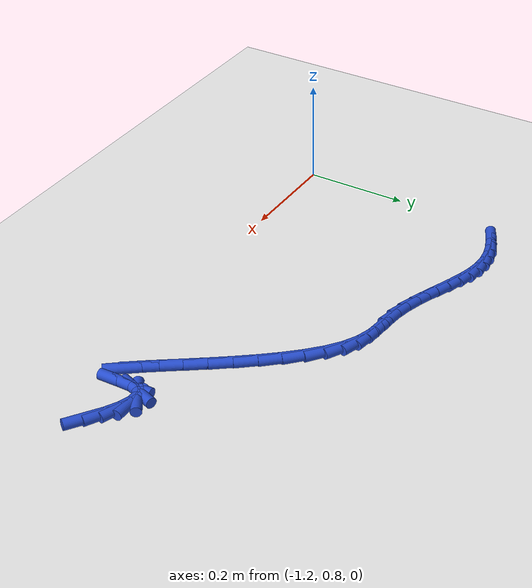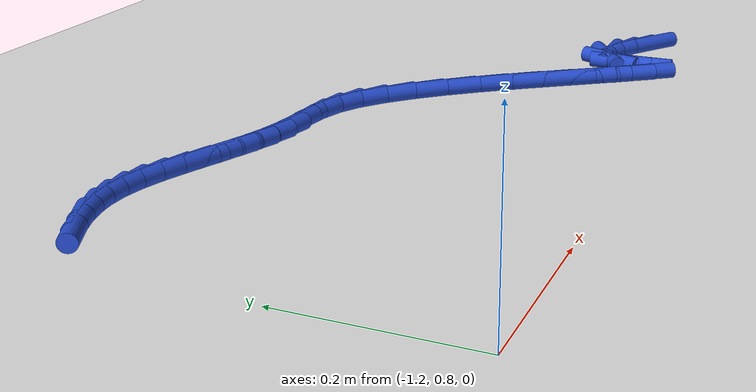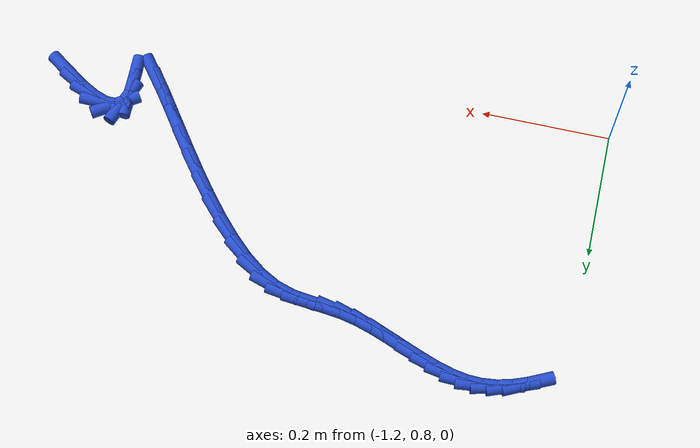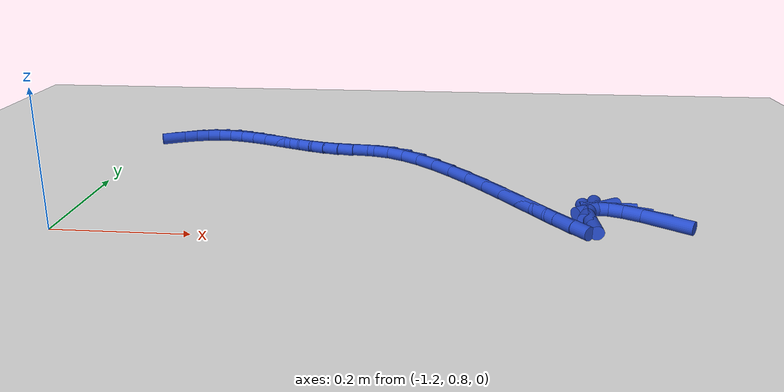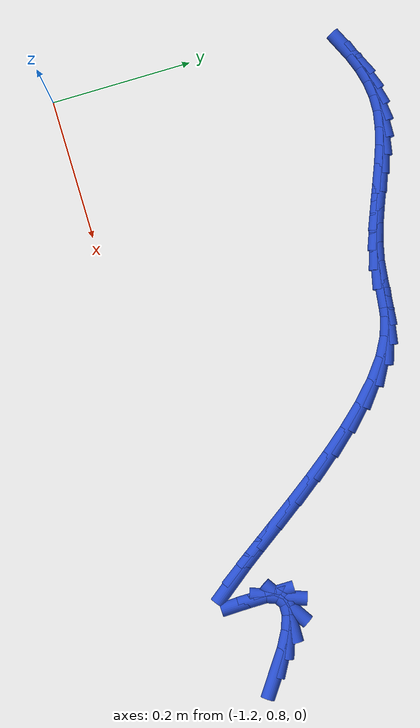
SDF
<sdf version="1.6">
 <world name="default">
  <model name="ground_plane">
   <static>1</static>
   <link name="link">
    <collision name="collision">
     <geometry><plane><normal>0 0 1</normal><size>100 100</size></plane></geometry>
     <surface><friction><ode><mu>100</mu><mu2>50</mu2></ode></friction></surface>
    </collision>
    <visual name="visual">
     <cast_shadows>0</cast_shadows>
     <geometry><plane><normal>0 0 1</normal><size>100 100</size></plane></geometry>
     <material>
      <script><uri>file://media/materials/scripts/gazebo.material</uri><name>Gazebo/WhiteGlow</name></script>
     </material>
    </visual>
   </link>
  </model>
  <model name="line">
   <link name="link_33">
    <pose>-0.35115421582154355 0.8745167682079008 0.01 0 1.57 -0.6122861447464318</pose>
    <collision name="collision">
     <geometry><cylinder><radius>0.01</radius><length>0.08</length></cylinder></geometry>
    </collision>
    <visual name="visual">
     <material>
      <script><name>Gazebo/Blue</name><uri>file://media/materials/scripts/gazebo.material</uri></script>
     </material>
     <geometry><cylinder><radius>0.01</radius><length>0.08</length></cylinder></geometry>
    </visual>
   </link>
   <link name="link_34">
    <pose>-0.3770783306099204 0.8927239794767546 0.01 0 1.57 -0.5092960089770318</pose>
    <collision name="collision">
     <geometry><cylinder><radius>0.01</radius><length>0.08</length></cylinder></geometry>
    </collision>
    <visual name="visual">
     <material>
      <script><name>Gazebo/Blue</name><uri>file://media/materials/scripts/gazebo.material</uri></script>
     </material>
     <geometry><cylinder><radius>0.01</radius><length>0.08</length></cylinder></geometry>
    </visual>
   </link>
   <link name="link_35">
    <pose>-0.4004082016848725 0.905752191878771 0.01 0 1.57 -0.33773999124530535</pose>
    <collision name="collision">
     <geometry><cylinder><radius>0.01</radius><length>0.08</length></cylinder></geometry>
    </collision>
    <visual name="visual">
     <material>
      <script><name>Gazebo/Blue</name><uri>file://media/materials/scripts/gazebo.material</uri></script>
     </material>
     <geometry><cylinder><radius>0.01</radius><length>0.08</length></cylinder></geometry>
    </visual>
   </link>
   <link name="link_36">
    <pose>-0.42043642604879505 0.9127860262010059 0.01 0 1.57 -0.013987138621494057</pose>
    <collision name="collision">
     <geometry><cylinder><radius>0.01</radius><length>0.08</length></cylinder></geometry>
    </collision>
    <visual name="visual">
     <material>
      <script><name>Gazebo/Blue</name><uri>file://media/materials/scripts/gazebo.material</uri></script>
     </material>
     <geometry><cylinder><radius>0.01</radius><length>0.08</length></cylinder></geometry>
    </visual>
   </link>
   <link name="link_37">
    <pose>-0.4364556007040834 0.9130101032305155 0.01 0 1.57 0.5797444640844538</pose>
    <collision name="collision">
     <geometry><cylinder><radius>0.01</radius><length>0.08</length></cylinder></geometry>
    </collision>
    <visual name="visual">
     <material>
      <script><name>Gazebo/Blue</name><uri>file://media/materials/scripts/gazebo.material</uri></script>
     </material>
     <geometry><cylinder><radius>0.01</radius><length>0.08</length></cylinder></geometry>
    </visual>
   </link>
   <link name="link_38">
    <pose>-0.4477583226531323 0.9056090437543557 0.01 0 1.57 1.2154460100073714</pose>
    <collision name="collision">
     <geometry><cylinder><radius>0.01</radius><length>0.08</length></cylinder></geometry>
    </collision>
    <visual name="visual">
     <material>
      <script><name>Gazebo/Blue</name><uri>file://media/materials/scripts/gazebo.material</uri></script>
     </material>
     <geometry><cylinder><radius>0.01</radius><length>0.08</length></cylinder></geometry>
    </visual>
   </link>
   <link name="link_39">
    <pose>-0.45363718889833726 0.8897674685595827 0.01 0 1.57 -1.5693667749853224</pose>
    <collision name="collision">
     <geometry><cylinder><radius>0.01</radius><length>0.08</length></cylinder></geometry>
    </collision>
    <visual name="visual">
     <material>
      <script><name>Gazebo/Blue</name><uri>file://media/materials/scripts/gazebo.material</uri></script>
     </material>
     <geometry><cylinder><radius>0.01</radius><length>0.08</length></cylinder></geometry>
    </visual>
   </link>
   <link name="link_40">
    <pose>-0.45360193034756197 0.865103425940899 0.01 0 1.57 -1.5482742946269215</pose>
    <collision name="collision">
     <geometry><cylinder><radius>0.01</radius><length>0.08</length></cylinder></geometry>
    </collision>
    <visual name="visual">
     <material>
      <script><name>Gazebo/Blue</name><uri>file://media/materials/scripts/gazebo.material</uri></script>
     </material>
     <geometry><cylinder><radius>0.01</radius><length>0.08</length></cylinder></geometry>
    </visual>
   </link>
   <link name="link_45">
    <pose>-0.48743832562579387 0.8535558136434883 0.01 0 1.57 -0.9192466775177843</pose>
    <collision name="collision">
     <geometry><cylinder><radius>0.01</radius><length>0.08</length></cylinder></geometry>
    </collision>
    <visual name="visual">
     <material>
      <script><name>Gazebo/Blue</name><uri>file://media/materials/scripts/gazebo.material</uri></script>
     </material>
     <geometry><cylinder><radius>0.01</radius><length>0.08</length></cylinder></geometry>
    </visual>
   </link>
   <link name="link_46">
    <pose>-0.5036345134865138 0.874792468611774 0.01 0 1.57 -0.9523577638987667</pose>
    <collision name="collision">
     <geometry><cylinder><radius>0.01</radius><length>0.08</length></cylinder></geometry>
    </collision>
    <visual name="visual">
     <material>
      <script><name>Gazebo/Blue</name><uri>file://media/materials/scripts/gazebo.material</uri></script>
     </material>
     <geometry><cylinder><radius>0.01</radius><length>0.08</length></cylinder></geometry>
    </visual>
   </link>
   <link name="link_47">
    <pose>-0.522267609655418 0.900978936813485 0.01 0 1.57 -0.963618666770061</pose>
    <collision name="collision">
     <geometry><cylinder><radius>0.01</radius><length>0.08</length></cylinder></geometry>
    </collision>
    <visual name="visual">
     <material>
      <script><name>Gazebo/Blue</name><uri>file://media/materials/scripts/gazebo.material</uri></script>
     </material>
     <geometry><cylinder><radius>0.01</radius><length>0.08</length></cylinder></geometry>
    </visual>
   </link>
   <link name="link_48">
    <pose>-0.5430335262153811 0.9308697332702403 0.01 0 1.57 -0.9611104917837557</pose>
    <collision name="collision">
     <geometry><cylinder><radius>0.01</radius><length>0.08</length></cylinder></geometry>
    </collision>
    <visual name="visual">
     <material>
      <script><name>Gazebo/Blue</name><uri>file://media/materials/scripts/gazebo.material</uri></script>
     </material>
     <geometry><cylinder><radius>0.01</radius><length>0.08</length></cylinder></geometry>
    </visual>
   </link>
   <link name="link_49">
    <pose>-0.5656281752492764 0.9632193730036571 0.01 0 1.57 -0.9476777698730287</pose>
    <collision name="collision">
     <geometry><cylinder><radius>0.01</radius><length>0.08</length></cylinder></geometry>
    </collision>
    <visual name="visual">
     <material>
      <script><name>Gazebo/Blue</name><uri>file://media/materials/scripts/gazebo.material</uri></script>
     </material>
     <geometry><cylinder><radius>0.01</radius><length>0.08</length></cylinder></geometry>
    </visual>
   </link>
   <link name="link_50">
    <pose>-0.5897474688399786 0.9967823710353542 0.01 0 1.57 -0.9236463535046997</pose>
    <collision name="collision">
     <geometry><cylinder><radius>0.01</radius><length>0.08</length></cylinder></geometry>
    </collision>
    <visual name="visual">
     <material>
      <script><name>Gazebo/Blue</name><uri>file://media/materials/scripts/gazebo.material</uri></script>
     </material>
     <geometry><cylinder><radius>0.01</radius><length>0.08</length></cylinder></geometry>
    </visual>
   </link>
   <link name="link_51">
    <pose>-0.6150873190703615 1.030313242386949 0.01 0 1.57 -0.8875365227898391</pose>
    <collision name="collision">
     <geometry><cylinder><radius>0.01</radius><length>0.08</length></cylinder></geometry>
    </collision>
    <visual name="visual">
     <material>
      <script><name>Gazebo/Blue</name><uri>file://media/materials/scripts/gazebo.material</uri></script>
     </material>
     <geometry><cylinder><radius>0.01</radius><length>0.08</length></cylinder></geometry>
    </visual>
   </link>
   <link name="link_52">
    <pose>-0.6413436380232991 1.06256650208006 0.01 0 1.57 -0.8359120592686451</pose>
    <collision name="collision">
     <geometry><cylinder><radius>0.01</radius><length>0.08</length></cylinder></geometry>
    </collision>
    <visual name="visual">
     <material>
      <script><name>Gazebo/Blue</name><uri>file://media/materials/scripts/gazebo.material</uri></script>
     </material>
     <geometry><cylinder><radius>0.01</radius><length>0.08</length></cylinder></geometry>
    </visual>
   </link>
   <link name="link_53">
    <pose>-0.6682123377816653 1.0922966651363046 0.01 0 1.57 -0.7625296663524496</pose>
    <collision name="collision">
     <geometry><cylinder><radius>0.01</radius><length>0.08</length></cylinder></geometry>
    </collision>
    <visual name="visual">
     <material>
      <script><name>Gazebo/Blue</name><uri>file://media/materials/scripts/gazebo.material</uri></script>
     </material>
     <geometry><cylinder><radius>0.01</radius><length>0.08</length></cylinder></geometry>
    </visual>
   </link>
   <link name="link_54">
    <pose>-0.6953893304283343 1.118258246577301 0.01 0 1.57 -0.6565941498748069</pose>
    <collision name="collision">
     <geometry><cylinder><radius>0.01</radius><length>0.08</length></cylinder></geometry>
    </collision>
    <visual name="visual">
     <material>
      <script><name>Gazebo/Blue</name><uri>file://media/materials/scripts/gazebo.material</uri></script>
     </material>
     <geometry><cylinder><radius>0.01</radius><length>0.08</length></cylinder></geometry>
    </visual>
   </link>
   <link name="link_55">
    <pose>-0.7225705280461803 1.1392057614246676 0.01 0 1.57 -0.5003534145019489</pose>
    <collision name="collision">
     <geometry><cylinder><radius>0.01</radius><length>0.08</length></cylinder></geometry>
    </collision>
    <visual name="visual">
     <material>
      <script><name>Gazebo/Blue</name><uri>file://media/materials/scripts/gazebo.material</uri></script>
     </material>
     <geometry><cylinder><radius>0.01</radius><length>0.08</length></cylinder></geometry>
    </visual>
   </link>
   <link name="link_56">
    <pose>-0.7494531698438683 1.1539041541249444 0.01 0 1.57 -0.3071795195601997</pose>
    <collision name="collision">
     <geometry><cylinder><radius>0.01</radius><length>0.08</length></cylinder></geometry>
    </collision>
    <visual name="visual">
     <material>
      <script><name>Gazebo/Blue</name><uri>file://media/materials/scripts/gazebo.material</uri></script>
     </material>
     <geometry><cylinder><radius>0.01</radius><length>0.08</length></cylinder></geometry>
    </visual>
   </link>
   <link name="link_57">
    <pose>-0.7758833735669134 1.1622883543159543 0.01 0 1.57 -0.16060609550666471</pose>
    <collision name="collision">
     <geometry><cylinder><radius>0.01</radius><length>0.08</length></cylinder></geometry>
    </collision>
    <visual name="visual">
     <material>
      <script><name>Gazebo/Blue</name><uri>file://media/materials/scripts/gazebo.material</uri></script>
     </material>
     <geometry><cylinder><radius>0.01</radius><length>0.08</length></cylinder></geometry>
    </visual>
   </link>
   <link name="link_58">
    <pose>-0.8019903108506162 1.1665177147551369 0.01 0 1.57 -0.0954093837573896</pose>
    <collision name="collision">
     <geometry><cylinder><radius>0.01</radius><length>0.08</length></cylinder></geometry>
    </collision>
    <visual name="visual">
     <material>
      <script><name>Gazebo/Blue</name><uri>file://media/materials/scripts/gazebo.material</uri></script>
     </material>
     <geometry><cylinder><radius>0.01</radius><length>0.08</length></cylinder></geometry>
    </visual>
   </link>
   <link name="link_59">
    <pose>-0.8279348402460798 1.1690006047676011 0.01 0 1.57 -0.12063070650166288</pose>
    <collision name="collision">
     <geometry><cylinder><radius>0.01</radius><length>0.08</length></cylinder></geometry>
    </collision>
    <visual name="visual">
     <material>
      <script><name>Gazebo/Blue</name><uri>file://media/materials/scripts/gazebo.material</uri></script>
     </material>
     <geometry><cylinder><radius>0.01</radius><length>0.08</length></cylinder></geometry>
    </visual>
   </link>
   <link name="link_60">
    <pose>-0.8538778203044062 1.1721453936784543 0.01 0 1.57 -0.21832715857526336</pose>
    <collision name="collision">
     <geometry><cylinder><radius>0.01</radius><length>0.08</length></cylinder></geometry>
    </collision>
    <visual name="visual">
     <material>
      <script><name>Gazebo/Blue</name><uri>file://media/materials/scripts/gazebo.material</uri></script>
     </material>
     <geometry><cylinder><radius>0.01</radius><length>0.08</length></cylinder></geometry>
    </visual>
   </link>
   <link name="link_61">
    <pose>-0.8799413938124724 1.177927951502651 0.01 0 1.57 -0.30485944899552486</pose>
    <collision name="collision">
     <geometry><cylinder><radius>0.01</radius><length>0.08</length></cylinder></geometry>
    </collision>
    <visual name="visual">
     <material>
      <script><name>Gazebo/Blue</name><uri>file://media/materials/scripts/gazebo.material</uri></script>
     </material>
     <geometry><cylinder><radius>0.01</radius><length>0.08</length></cylinder></geometry>
    </visual>
   </link>
   <link name="link_62">
    <pose>-0.906052573610294 1.1861443238581844 0.01 0 1.57 -0.35883309516860484</pose>
    <collision name="collision">
     <geometry><cylinder><radius>0.01</radius><length>0.08</length></cylinder></geometry>
    </collision>
    <visual name="visual">
     <material>
      <script><name>Gazebo/Blue</name><uri>file://media/materials/scripts/gazebo.material</uri></script>
     </material>
     <geometry><cylinder><radius>0.01</radius><length>0.08</length></cylinder></geometry>
    </visual>
   </link>
   <link name="link_63">
    <pose>-0.9320770353660446 1.195905350090115 0.01 0 1.57 -0.3836732709522244</pose>
    <collision name="collision">
     <geometry><cylinder><radius>0.01</radius><length>0.08</length></cylinder></geometry>
    </collision>
    <visual name="visual">
     <material>
      <script><name>Gazebo/Blue</name><uri>file://media/materials/scripts/gazebo.material</uri></script>
     </material>
     <geometry><cylinder><radius>0.01</radius><length>0.08</length></cylinder></geometry>
    </visual>
   </link>
   <link name="link_64">
    <pose>-0.9578804324777763 1.206321620760834 0.01 0 1.57 -0.3806049964861435</pose>
    <collision name="collision">
     <geometry><cylinder><radius>0.01</radius><length>0.08</length></cylinder></geometry>
    </collision>
    <visual name="visual">
     <material>
      <script><name>Gazebo/Blue</name><uri>file://media/materials/scripts/gazebo.material</uri></script>
     </material>
     <geometry><cylinder><radius>0.01</radius><length>0.08</length></cylinder></geometry>
    </visual>
   </link>
   <link name="link_65">
    <pose>-0.9833284183435432 1.2165037264327343 0.01 0 1.57 -0.34816262555777616</pose>
    <collision name="collision">
     <geometry><cylinder><radius>0.01</radius><length>0.08</length></cylinder></geometry>
    </collision>
    <visual name="visual">
     <material>
      <script><name>Gazebo/Blue</name><uri>file://media/materials/scripts/gazebo.material</uri></script>
     </material>
     <geometry><cylinder><radius>0.01</radius><length>0.08</length></cylinder></geometry>
    </visual>
   </link>
   <link name="link_66">
    <pose>-1.0082866463613998 1.2255622576682088 0.01 0 1.57 -0.28182718618476227</pose>
    <collision name="collision">
     <geometry><cylinder><radius>0.01</radius><length>0.08</length></cylinder></geometry>
    </collision>
    <visual name="visual">
     <material>
      <script><name>Gazebo/Blue</name><uri>file://media/materials/scripts/gazebo.material</uri></script>
     </material>
     <geometry><cylinder><radius>0.01</radius><length>0.08</length></cylinder></geometry>
    </visual>
   </link>
   <link name="link_67">
    <pose>-1.0326207699293979 1.2326078050296492 0.01 0 1.57 -0.17398242949517562</pose>
    <collision name="collision">
     <geometry><cylinder><radius>0.01</radius><length>0.08</length></cylinder></geometry>
    </collision>
    <visual name="visual">
     <material>
      <script><name>Gazebo/Blue</name><uri>file://media/materials/scripts/gazebo.material</uri></script>
     </material>
     <geometry><cylinder><radius>0.01</radius><length>0.08</length></cylinder></geometry>
    </visual>
   </link>
   <link name="link_68">
    <pose>-1.0561965825019235 1.23675147627866 0.01 0 1.57 -0.028811212141371677</pose>
    <collision name="collision">
     <geometry><cylinder><radius>0.01</radius><length>0.08</length></cylinder></geometry>
    </collision>
    <visual name="visual">
     <material>
      <script><name>Gazebo/Blue</name><uri>file://media/materials/scripts/gazebo.material</uri></script>
     </material>
     <geometry><cylinder><radius>0.01</radius><length>0.08</length></cylinder></geometry>
    </visual>
   </link>
   <link name="link_69">
    <pose>-1.0789619772237475 1.2374075564398261 0.01 0 1.57 0.11718021869951584</pose>
    <collision name="collision">
     <geometry><cylinder><radius>0.01</radius><length>0.08</length></cylinder></geometry>
    </collision>
    <visual name="visual">
     <material>
      <script><name>Gazebo/Blue</name><uri>file://media/materials/scripts/gazebo.material</uri></script>
     </material>
     <geometry><cylinder><radius>0.01</radius><length>0.08</length></cylinder></geometry>
    </visual>
   </link>
   <link name="link_70">
    <pose>-1.1010849830401146 1.2348032467516248 0.01 0 1.57 0.24850769849406085</pose>
    <collision name="collision">
     <geometry><cylinder><radius>0.01</radius><length>0.08</length></cylinder></geometry>
    </collision>
    <visual name="visual">
     <material>
      <script><name>Gazebo/Blue</name><uri>file://media/materials/scripts/gazebo.material</uri></script>
     </material>
     <geometry><cylinder><radius>0.01</radius><length>0.08</length></cylinder></geometry>
    </visual>
   </link>
   <link name="link_71">
    <pose>-1.1227701395593976 1.229300574818688 0.01 0 1.57 0.35854848916392595</pose>
    <collision name="collision">
     <geometry><cylinder><radius>0.01</radius><length>0.08</length></cylinder></geometry>
    </collision>
    <visual name="visual">
     <material>
      <script><name>Gazebo/Blue</name><uri>file://media/materials/scripts/gazebo.material</uri></script>
     </material>
     <geometry><cylinder><radius>0.01</radius><length>0.08</length></cylinder></geometry>
    </visual>
   </link>
   <link name="link_72">
    <pose>-1.1442219863899705 1.2212615682456474 0.01 0 1.57 0.44486995312543687</pose>
    <collision name="collision">
     <geometry><cylinder><radius>0.01</radius><length>0.08</length></cylinder></geometry>
    </collision>
    <visual name="visual">
     <material>
      <script><name>Gazebo/Blue</name><uri>file://media/materials/scripts/gazebo.material</uri></script>
     </material>
     <geometry><cylinder><radius>0.01</radius><length>0.08</length></cylinder></geometry>
    </visual>
   </link>
  </model>
 </world>
</sdf>
